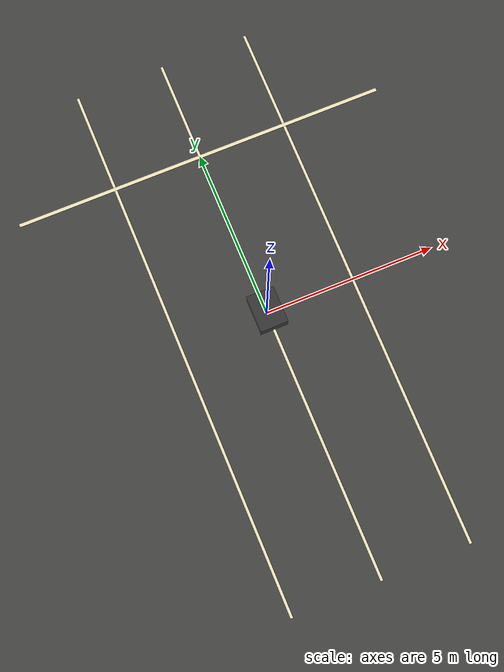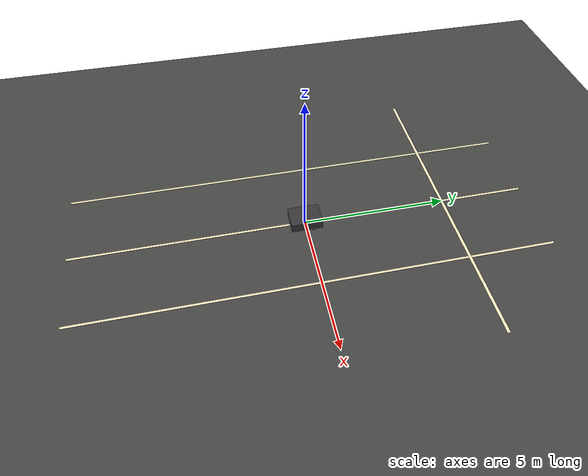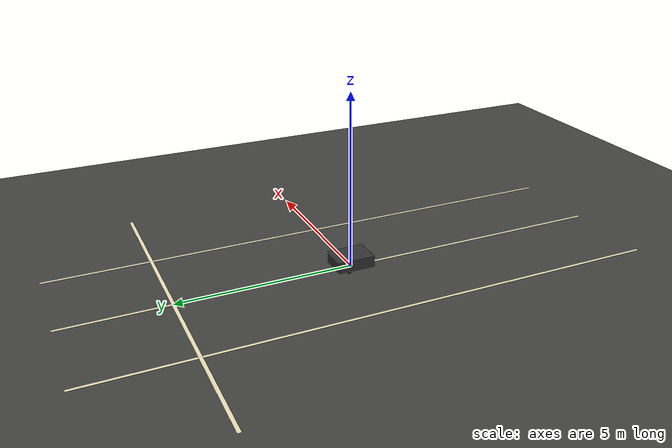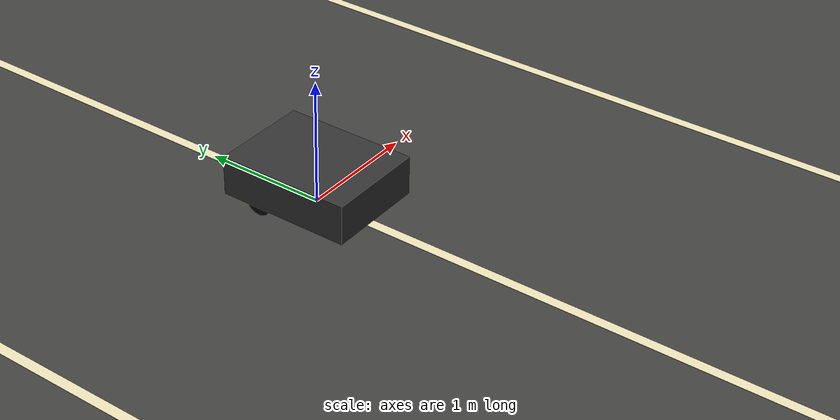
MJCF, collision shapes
<mujoco model="Shogi">
  <compiler angle="radian" meshdir="meshes/"/>
  <option timestep="0.002" integrator="RK4"/>

  <visual>
    <headlight diffuse="0.6 0.6 0.6" ambient="0.25 0.25 0.25" specular="0.2 0.2 0.2"/>
    <map znear="0.01" zfar="100"/>
  </visual>

  <asset>
    <texture name="asphalt_texture" type="2d" file="textures/asphalt.png"/>
    <material name="asphalt" texture="asphalt_texture" texrepeat="24 24" reflectance="0.03"
              rgba="0.85 0.85 0.82 1"/>
    <material name="parking_line" rgba="0.92 0.88 0.72 1"/>
    <mesh name="base_link_part1" file="base_link_part1.STL"/>
    <mesh name="base_link_part2" file="base_link_part2.STL"/>
    <mesh name="base_link_part3" file="base_link_part3.STL"/>
    <mesh name="Caster_link" file="Caster_link.STL"/>
    <mesh name="Lidar_Link" file="Lidar_Link.STL"/>
    <mesh name="Camera_Link" file="Camera_Link.STL"/>
    <mesh name="GPS_Link" file="GPS_Link.STL"/>
    <mesh name="Right_Wheel_Link" file="Right_Wheel_Link.STL"/>
    <mesh name="Left_Wheel_Link" file="Left_Wheel_Link.STL"/>
  </asset>

  <worldbody>
    <light name="sun" directional="true" pos="0 0 10" dir="-0.35 -0.45 -1"
           diffuse="0.7 0.68 0.62" specular="0.15 0.15 0.15"/>
    <light name="parking_lot_light_left" pos="-5 -4 7" dir="0.6 0.4 -1"
           diffuse="0.65 0.62 0.55" specular="0.25 0.25 0.2"/>
    <light name="parking_lot_light_right" pos="5 4 7" dir="-0.6 -0.4 -1"
           diffuse="0.55 0.58 0.65" specular="0.2 0.22 0.25"/>

    <geom name="asphalt_floor" type="plane" size="20 20 0.1" material="asphalt"
          friction="0.95 0.03 0.003"/>
    <geom name="parking_line_center" type="box" pos="0 0 0.003" size="0.04 8 0.002"
          material="parking_line" contype="0" conaffinity="0"/>
    <geom name="parking_line_left" type="box" pos="-2.6 0 0.003" size="0.04 8 0.002"
          material="parking_line" contype="0" conaffinity="0"/>
    <geom name="parking_line_right" type="box" pos="2.6 0 0.003" size="0.04 8 0.002"
          material="parking_line" contype="0" conaffinity="0"/>
    <geom name="parking_stop_line" type="box" pos="0 5 0.004" size="5.5 0.05 0.002"
          material="parking_line" contype="0" conaffinity="0"/>

    <body name="base_link" pos="-0.77894 1.93808 -0.2255">
      <freejoint name="base_freejoint"/>
      <inertial pos="0.77894 -1.93808 0.42" mass="24.349"
                diaginertia="0.65 0.6 0.28"/>
      <geom type="mesh" rgba="0.79216 0.81961 0.93333 1" mesh="base_link_part1"
            contype="0" conaffinity="0"/>
      <geom type="mesh" rgba="0.79216 0.81961 0.93333 1" mesh="base_link_part2"
            contype="0" conaffinity="0"/>
      <geom type="mesh" rgba="0.79216 0.81961 0.93333 1" mesh="base_link_part3"
            contype="0" conaffinity="0"/>
      <geom name="base_collision" type="box" pos="0.77894 -1.93808 0.45"
            size="0.409 0.542 0.16" rgba="0.2 0.2 0.2 0"
            friction="0.6 0.02 0.001"/>
      <geom pos="0.77904 -2.3725 0.54987" quat="0.707105 -0.707108 0 0" type="mesh"
            rgba="1 1 1 1" mesh="Lidar_Link" contype="0" conaffinity="0"/>
      <geom pos="0.78801 -2.3703 0.65142" quat="0.984807 0.17365 0 0" type="mesh"
            rgba="0.792157 0.819608 0.933333 1" mesh="Camera_Link" contype="0" conaffinity="0"/>
      <geom pos="0.77883 -1.5005 1.0058" quat="0.707105 0.707108 0 0" type="mesh"
            rgba="1 1 1 1" mesh="GPS_Link" contype="0" conaffinity="0"/>
      <body name="Caster_link" pos="0.77814 -2.2897 0.30331">
        <geom name="caster_mount" type="cylinder" pos="0 0 0.025" size="0.028 0.055"
              rgba="0.55 0.58 0.66 1" contype="0" conaffinity="0"/>
        <body name="Caster_Swivel" pos="0 0 0">
          <inertial pos="0 -0.035 -0.004" mass="0.45" diaginertia="0.0009 0.0009 0.0005"/>
          <joint name="Caster_Swivel" pos="0 0 0" axis="0 0 1" limited="false"
                 damping="0.004" frictionloss="0.0005"/>
          <geom name="caster_swivel_pin" type="cylinder" pos="0 0 0" size="0.018 0.025"
                rgba="0.32 0.34 0.4 1" contype="0" conaffinity="0"/>
          <geom name="caster_fork_left" type="box" pos="-0.042 -0.045 -0.003" size="0.008 0.018 0.075"
                rgba="0.42 0.45 0.52 1" contype="0" conaffinity="0"/>
          <geom name="caster_fork_right" type="box" pos="0.042 -0.045 -0.003" size="0.008 0.018 0.075"
                rgba="0.42 0.45 0.52 1" contype="0" conaffinity="0"/>
          <body name="Caster_Wheel" pos="0 -0.045 -0.003">
            <inertial pos="0 0 0" mass="0.35" diaginertia="0.0007 0.0007 0.0004"/>
            <joint name="Caster_Wheel_Roll" pos="0 0 0" axis="1 0 0" limited="false"
                   damping="0.003" armature="0.001"/>
            <geom name="caster_wheel" type="cylinder" quat="0.707107 0 0.707107 0"
                  size="0.075 0.032" rgba="0.04 0.04 0.04 1"
                  friction="0.75 0.02 0.002"/>
          </body>
        </body>
      </body>
      <body name="Right_Wheel_Link" pos="0.37276 -1.7127 0.34419" quat="-7.14974e-07 -3.60295e-06 -0.980874 -0.194646">
        <inertial pos="-0.0370066 -2.47008e-05 1.86946e-05" quat="0.638314 0.769776 8.29338e-07 -6.87704e-07" mass="2.05714" diaginertia="0.0144751 0.00793699 0.00793588"/>
        <joint name="Right_Wheel" pos="0 0 0" axis="1 0 0" limited="false" damping="0.02" armature="0.01"/>
        <geom type="mesh" rgba="1 1 1 1" mesh="Right_Wheel_Link"
              contype="0" conaffinity="0"/>
        <geom name="right_wheel_collision" type="cylinder" pos="-0.04455 0 0"
              quat="0.707107 0 0.707107 0" size="0.113 0.0445"
              rgba="0.05 0.05 0.05 0" friction="1.05 0.03 0.003"/>
      </body>
      <body name="Left_Wheel_Link" pos="0.37276 -1.7127 0.34419" quat="0.644903 0.764264 0 0">
        <inertial pos="0.775343 -2.47012e-05 1.86946e-05" quat="0.638307 0.769782 8.28749e-07 -6.87203e-07" mass="2.05714" diaginertia="0.0144751 0.00793699 0.00793588"/>
        <joint name="Left_Wheel" pos="0 0 0" axis="1 0 0" limited="false" damping="0.02" armature="0.01"/>
        <geom type="mesh" rgba="1 1 1 1" mesh="Left_Wheel_Link"
              contype="0" conaffinity="0"/>
        <geom name="left_wheel_collision" type="cylinder" pos="0.7678 0 0"
              quat="0.707107 0 0.707107 0" size="0.113 0.0445"
              rgba="0.05 0.05 0.05 0" friction="1.05 0.03 0.003"/>
      </body>
    </body>
  </worldbody>

  <actuator>
    <velocity name="right_wheel_velocity" joint="Right_Wheel" kv="8"
              ctrllimited="true" ctrlrange="-30 30"
              forcelimited="true" forcerange="-55 55"/>
    <velocity name="left_wheel_velocity" joint="Left_Wheel" kv="8"
              ctrllimited="true" ctrlrange="-30 30"
              forcelimited="true" forcerange="-55 55"/>
  </actuator>
</mujoco>
